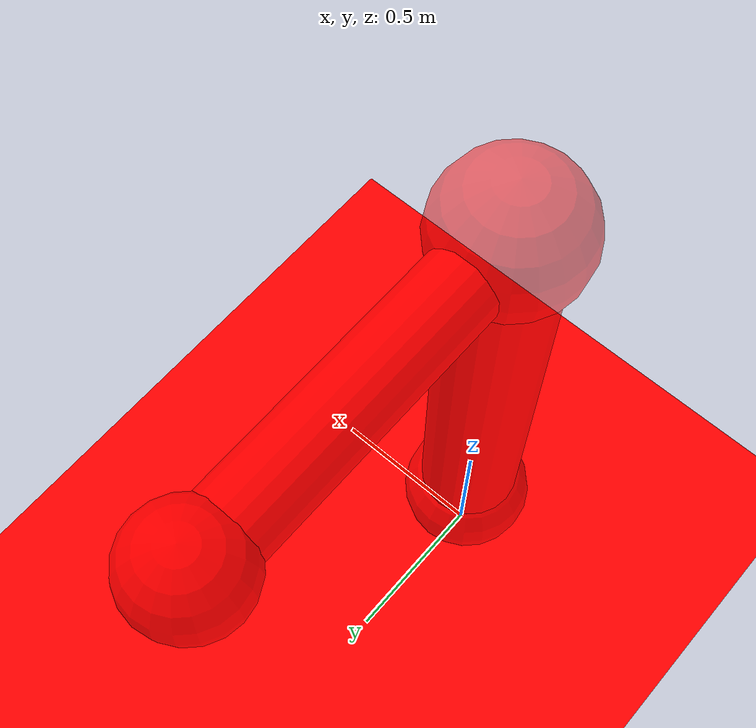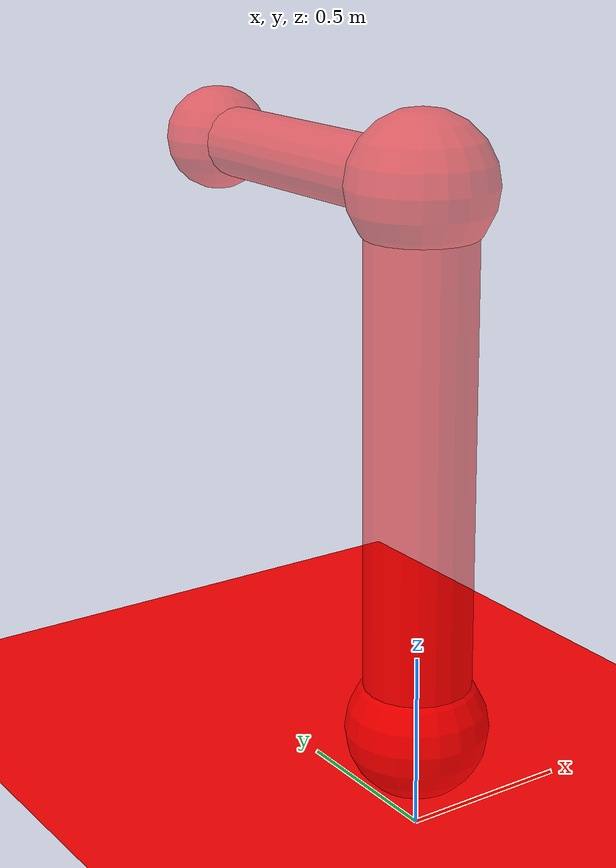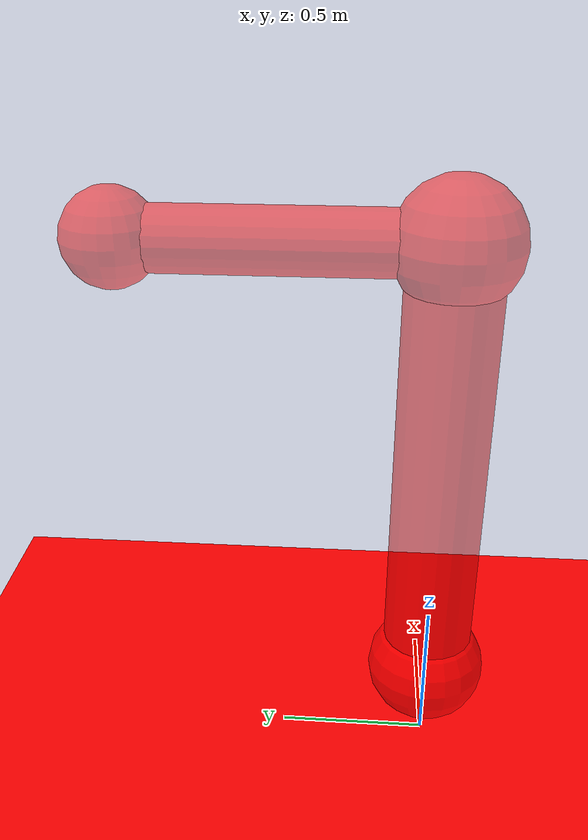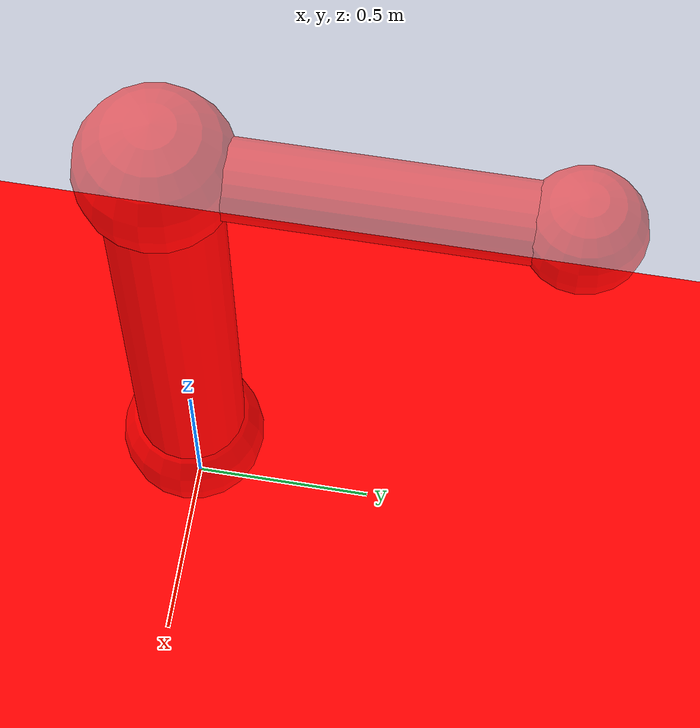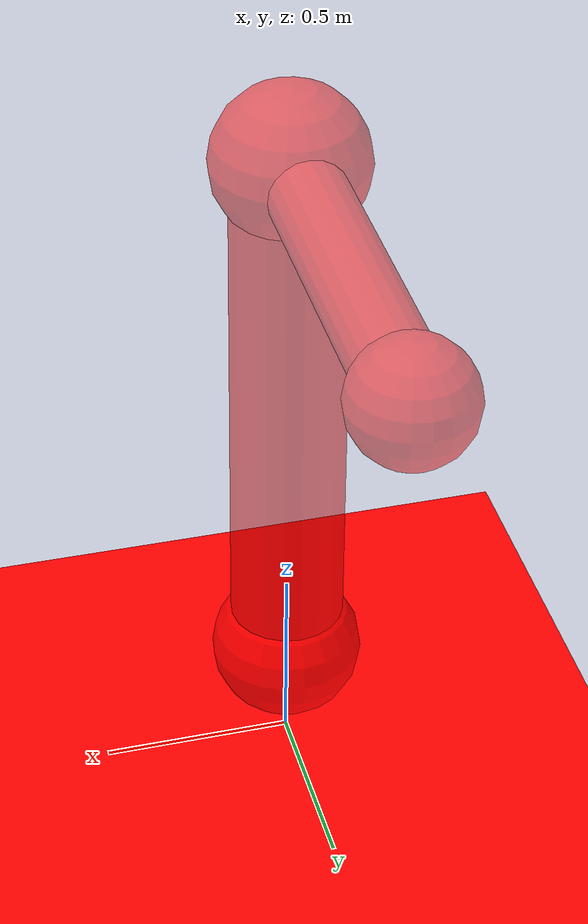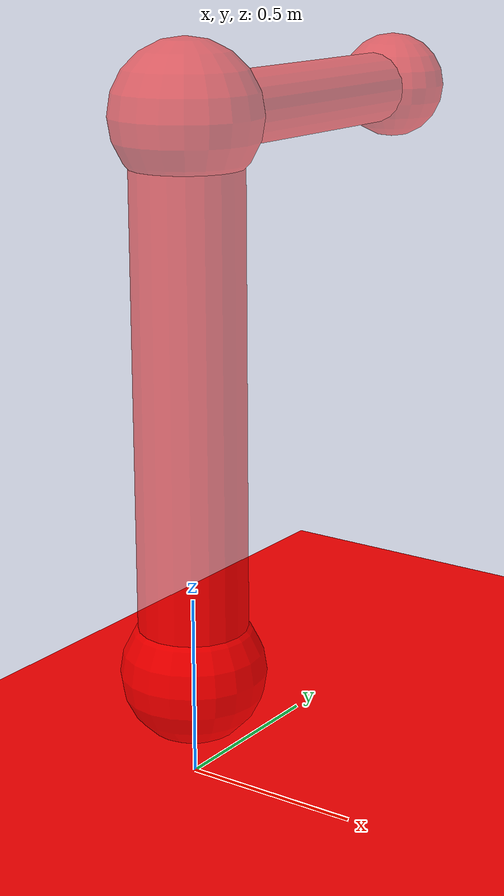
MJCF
<mujoco>
    <size njmax="3000" nconmax="1000"/>
    <option gravity="0 0 0" timestep="0.002"/>
    <default>
        <joint limited="false" damping="5000" range="-180 180" />
        <geom condim="6" size="0.032" rgba="1 0 0 0.5" type="capsule" density="0.01"/>
        <motor ctrllimited="true" ctrlrange="-1.0 1.0" gear="3000"/>
        <site size="0.05" type="sphere" rgba="0 0 1 0"/>
    </default>
    <worldbody>
        <geom name="floor" size="5 5 0.1" type="plane" condim="6"/>
        <body name="robot" pos="0.0 0.0 0.0">
            <camera name="vision" pos="0 0 .15" xyaxes="0 -1 0 .4 0 1" fovy="90"/>
            <site name="robot" pos="0 0 0" rgba="1 0 0 0"/>

            <body name="link_1" pos="0.0 0.0 0.3">
                <joint type="hinge" axis="0 0 1" name="joint_1"/>
                <geom pos="0.0 0.0 0.0" type="sphere" size="0.2" name="link_1"/>
                <site name="center_link_1" pos="0 0 0"/>

                <body name="link_2" pos="0.0 0.0 0.0">
                    <joint type="hinge" axis="1 0 0" name="joint_2"/>
                    <geom fromto="0.0 0.0 0.0 0.0 0.0 1.5" size="0.15" name="link_2"/>
                    <site name="center_link_2" pos="0 0 0.75" />

                    <body name="link_3" pos="0.0 0.0 1.5">
                        <joint type="hinge" axis="1 0 0" name="joint_3"/>
                        <geom pos="0.0 0.0 0.0" type="sphere" size="0.2" name="link_3"/>
                        <site name="center_link_3" pos="0 0 0" />

                        <body name="link_4" pos="0.0 0.0 0.0">
                            <geom fromto="0.0 0.0 0.0 0.0 1.0 0.0" size="0.1" name="link_4"/>
                            <site name="center_link_4" pos="0 0.5 0" />
                                <body name="link_5" pos="0.0 1.0 0.0">
                                    <geom pos="0.0 0.0 0.0" type="sphere" size="0.15" name="link_5"/>
                                    <site name="center_link_5" pos="0 0 0" />
                                </body>
                        </body>
                    </body>
                </body>
            </body>
        </body>
    </worldbody>
    <sensor>
        <touch site="center_link_5" name="touch_end_effector"/>

        <jointpos joint="joint_1" name="jointpos_joint_1"/>
        <jointpos joint="joint_2" name="jointpos_joint_2"/>
        <jointpos joint="joint_3" name="jointpos_joint_3"/>

        <jointvel joint="joint_1" name="jointvel_joint_1"/>
        <jointvel joint="joint_2" name="jointvel_joint_2"/>
        <jointvel joint="joint_3" name="jointvel_joint_3"/>

        <!-- Used for observation -->

        <accelerometer site="center_link_1" name="accelerometer_link_1"/>
        <velocimeter site="center_link_1" name="velocimeter_link_1"/>
        <gyro site="center_link_1" name="gyro_link_1"/>
        <magnetometer site="center_link_1" name="magnetometer_link_1"/>

        <accelerometer site="center_link_2" name="accelerometer_link_2"/>
        <velocimeter site="center_link_2" name="velocimeter_link_2"/>
        <gyro site="center_link_2" name="gyro_link_2"/>
        <magnetometer site="center_link_2" name="magnetometer_link_2"/>

        <accelerometer site="center_link_3" name="accelerometer_link_3"/>
        <velocimeter site="center_link_3" name="velocimeter_link_3"/>
        <gyro site="center_link_3" name="gyro_link_3"/>
        <magnetometer site="center_link_3" name="magnetometer_link_3"/>

        <accelerometer site="center_link_4" name="accelerometer_link_4"/>
        <velocimeter site="center_link_4" name="velocimeter_link_4"/>
        <gyro site="center_link_4" name="gyro_link_4"/>
        <magnetometer site="center_link_4" name="magnetometer_link_4"/>

        <accelerometer site="center_link_5" name="accelerometer_link_5"/>
        <velocimeter site="center_link_5" name="velocimeter_link_5"/>
        <gyro site="center_link_5" name="gyro_link_5"/>
        <magnetometer site="center_link_5" name="magnetometer_link_5"/>

        <!-- Used for intrinsic constraints -->
        <subtreecom body="robot" name="subtreecom"/>
        <subtreelinvel body="robot" name="subtreelinvel"/>
        <subtreeangmom body="robot" name="subtreeangmom"/>

    </sensor>
    <actuator>
        <motor name="joint_1" joint="joint_1"/>
        <motor name="joint_2" joint="joint_2"/>
        <motor name="joint_3" joint="joint_3"/>
    </actuator>
</mujoco>
